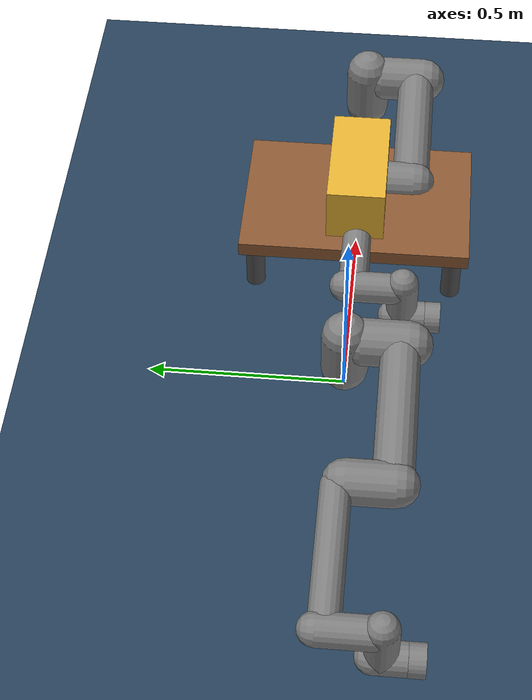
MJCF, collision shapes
<mujoco model="ur5e_lab6_dual">

  <compiler angle="radian" meshdir="assets" autolimits="true"/>
  <option timestep="0.001" gravity="0 0 -9.81" integrator="implicitfast"/>

  <!-- ============================================================
       Shared defaults (Menagerie UR5e class hierarchy)
       ============================================================ -->
  <default>
    <default class="ur5e">
      <material specular="0.5" shininess="0.25"/>
      <joint axis="0 1 0" range="-6.28319 6.28319" armature="0.1"/>
      <default class="size3">
        <default class="size3_limited">
          <joint range="-3.1415 3.1415"/>
        </default>
      </default>
      <default class="size1">
      </default>
      <default class="visual">
        <geom type="mesh" contype="0" conaffinity="0" group="2"/>
      </default>
      <default class="collision">
        <geom type="capsule" group="3"/>
        <default class="eef_collision">
          <geom type="cylinder"/>
        </default>
      </default>
      <site size="0.001" rgba="0.5 0.5 0.5 0.3" group="4"/>
    </default>
  </default>

  <!-- ============================================================
       Shared mesh assets (loaded once, used by both arms)
       ============================================================ -->
  <asset>
    <!-- Menagerie UR5e materials -->
    <material class="ur5e" name="black" rgba="0.033 0.033 0.033 1"/>
    <material class="ur5e" name="jointgray" rgba="0.278 0.278 0.278 1"/>
    <material class="ur5e" name="linkgray" rgba="0.82 0.82 0.82 1"/>
    <material class="ur5e" name="urblue" rgba="0.49 0.678 0.8 1"/>

    <!-- Menagerie UR5e meshes -->
    <mesh file="base_0.obj"/>
    <mesh file="base_1.obj"/>
    <mesh file="shoulder_0.obj"/>
    <mesh file="shoulder_1.obj"/>
    <mesh file="shoulder_2.obj"/>
    <mesh file="upperarm_0.obj"/>
    <mesh file="upperarm_1.obj"/>
    <mesh file="upperarm_2.obj"/>
    <mesh file="upperarm_3.obj"/>
    <mesh file="forearm_0.obj"/>
    <mesh file="forearm_1.obj"/>
    <mesh file="forearm_2.obj"/>
    <mesh file="forearm_3.obj"/>
    <mesh file="wrist1_0.obj"/>
    <mesh file="wrist1_1.obj"/>
    <mesh file="wrist1_2.obj"/>
    <mesh file="wrist2_0.obj"/>
    <mesh file="wrist2_1.obj"/>
    <mesh file="wrist2_2.obj"/>
    <mesh file="wrist3.obj"/>

    <!-- Scene materials -->
    <texture type="skybox" builtin="gradient" rgb1="0.3 0.5 0.7" rgb2="0 0 0"
      width="512" height="3072"/>
    <texture type="2d" name="groundplane" builtin="checker" mark="edge"
      rgb1="0.2 0.3 0.4" rgb2="0.1 0.2 0.3" markrgb="0.8 0.8 0.8"
      width="300" height="300"/>
    <material name="groundplane" texture="groundplane" texuniform="true"
      texrepeat="5 5" reflectance="0.2"/>
    <material name="table_wood" rgba="0.55 0.35 0.20 1"/>
    <material name="box_obj" rgba="0.90 0.70 0.20 1"/>
  </asset>

  <statistic center="0.5 0 0.4" extent="1.8"/>

  <visual>
    <headlight diffuse="0.6 0.6 0.6" ambient="0.3 0.3 0.3" specular="0 0 0"/>
    <rgba haze="0.15 0.25 0.35 1"/>
    <global azimuth="150" elevation="-25" offwidth="1920" offheight="1080"/>
  </visual>

  <!-- Include arm definitions -->
  <include file="ur5e_left.xml"/>
  <include file="ur5e_right.xml"/>

  <!-- Weld constraints for bimanual grasp (disabled by default, activated in M4) -->
  <equality>
    <weld name="left_grasp" body1="left_wrist_3_link" body2="box" active="false"/>
    <weld name="right_grasp" body1="right_wrist_3_link" body2="box" active="false"/>
  </equality>

  <worldbody>
    <!-- Lighting -->
    <light pos="0.5 0 3.0" dir="0 0 -1" directional="true"/>
    <light pos="-1.0 -1.0 2.0" dir="0.5 0.5 -1" directional="false"/>
    <light pos="2.0 -1.0 2.0" dir="-0.5 0.5 -1" directional="false"/>

    <!-- Floor -->
    <geom name="floor" size="0 0 0.05" type="plane" material="groundplane"/>

    <body name="table" pos="0.5 0 0.15">
      <geom name="table_top" type="box" size="0.20 0.30 0.02"
            contype="1" conaffinity="1" material="table_wood"
            friction="0.8 0.005 0.0001"/>
      <!-- Table legs (visual only) -->
      <geom type="cylinder" pos="-0.16 -0.26 -0.085" size="0.025 0.065"
            rgba="0.3 0.3 0.3 1" contype="0" conaffinity="0"/>
      <geom type="cylinder" pos=" 0.16 -0.26 -0.085" size="0.025 0.065"
            rgba="0.3 0.3 0.3 1" contype="0" conaffinity="0"/>
      <geom type="cylinder" pos="-0.16  0.26 -0.085" size="0.025 0.065"
            rgba="0.3 0.3 0.3 1" contype="0" conaffinity="0"/>
      <geom type="cylinder" pos=" 0.16  0.26 -0.085" size="0.025 0.065"
            rgba="0.3 0.3 0.3 1" contype="0" conaffinity="0"/>
    </body>

    <!-- Box object (free body).
         30cm x 15cm x 15cm -> half-extents: 0.15 x 0.075 x 0.075.
         Table surface at z=0.17, box half-height=0.075 -> center at z=0.245. -->
    <body name="box" pos="0.5 0 0.245">
      <freejoint name="box_freejoint"/>
      <geom name="box_geom" type="box" size="0.15 0.075 0.075"
            contype="1" conaffinity="1" condim="4"
            friction="2.0 0.01 0.001"
            solref="0.01 1" solimp="0.95 0.99 0.001"
            density="296" material="box_obj"/>
    </body>
  </worldbody>

</mujoco>

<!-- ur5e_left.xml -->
<mujoco>
  <!--
    Left UR5e arm (Menagerie body hierarchy with OBJ mesh visuals).
    Base at world origin with Menagerie mesh-alignment quat.
    Motor actuators for direct torque control.
  -->
  <worldbody>
    <body name="left_base" pos="0 0 0" quat="0 0 0 -1" childclass="ur5e">
      <inertial mass="4.0" pos="0 0 0" diaginertia="0.00443333156 0.00443333156 0.0072"/>
      <geom mesh="base_0" material="black" class="visual"/>
      <geom mesh="base_1" material="jointgray" class="visual"/>
      <body name="left_shoulder_link" pos="0 0 0.163">
        <inertial mass="3.7" pos="0 0 0" diaginertia="0.0102675 0.0102675 0.00666"/>
        <joint name="left_shoulder_pan_joint" class="size3" axis="0 0 1"/>
        <geom mesh="shoulder_0" material="urblue" class="visual"/>
        <geom mesh="shoulder_1" material="black" class="visual"/>
        <geom mesh="shoulder_2" material="jointgray" class="visual"/>
        <geom class="collision" size="0.06 0.06" pos="0 0 -0.04"/>
        <body name="left_upper_arm_link" pos="0 0.138 0" quat="1 0 1 0">
          <inertial mass="8.393" pos="0 0 0.2125" diaginertia="0.133886 0.133886 0.0151074"/>
          <joint name="left_shoulder_lift_joint" class="size3"/>
          <geom mesh="upperarm_0" material="linkgray" class="visual"/>
          <geom mesh="upperarm_1" material="black" class="visual"/>
          <geom mesh="upperarm_2" material="jointgray" class="visual"/>
          <geom mesh="upperarm_3" material="urblue" class="visual"/>
          <geom class="collision" pos="0 -0.04 0" quat="1 1 0 0" size="0.06 0.06"/>
          <geom class="collision" size="0.05 0.2" pos="0 0 0.2"/>
          <body name="left_forearm_link" pos="0 -0.131 0.425">
            <inertial mass="2.275" pos="0 0 0.196" diaginertia="0.0311796 0.0311796 0.004095"/>
            <joint name="left_elbow_joint" class="size3_limited"/>
            <geom mesh="forearm_0" material="urblue" class="visual"/>
            <geom mesh="forearm_1" material="linkgray" class="visual"/>
            <geom mesh="forearm_2" material="black" class="visual"/>
            <geom mesh="forearm_3" material="jointgray" class="visual"/>
            <geom class="collision" pos="0 0.08 0" quat="1 1 0 0" size="0.055 0.06"/>
            <geom class="collision" size="0.038 0.19" pos="0 0 0.2"/>
            <body name="left_wrist_1_link" pos="0 0 0.392" quat="1 0 1 0">
              <inertial mass="1.219" pos="0 0.127 0" diaginertia="0.0025599 0.0025599 0.0021942"/>
              <joint name="left_wrist_1_joint" class="size1"/>
              <geom mesh="wrist1_0" material="black" class="visual"/>
              <geom mesh="wrist1_1" material="urblue" class="visual"/>
              <geom mesh="wrist1_2" material="jointgray" class="visual"/>
              <geom class="collision" pos="0 0.05 0" quat="1 1 0 0" size="0.04 0.07"/>
              <body name="left_wrist_2_link" pos="0 0.127 0">
                <inertial mass="1.219" pos="0 0 0.1" diaginertia="0.0025599 0.0025599 0.0021942"/>
                <joint name="left_wrist_2_joint" axis="0 0 1" class="size1"/>
                <geom mesh="wrist2_0" material="black" class="visual"/>
                <geom mesh="wrist2_1" material="urblue" class="visual"/>
                <geom mesh="wrist2_2" material="jointgray" class="visual"/>
                <geom class="collision" size="0.04 0.06" pos="0 0 0.04"/>
                <geom class="collision" pos="0 0.02 0.1" quat="1 1 0 0" size="0.04 0.04"/>
                <body name="left_wrist_3_link" pos="0 0 0.1">
                  <inertial mass="0.1889" pos="0 0.0771683 0" quat="1 0 0 1"
                    diaginertia="0.000132134 9.90863e-05 9.90863e-05"/>
                  <joint name="left_wrist_3_joint" class="size1"/>
                  <geom material="linkgray" mesh="wrist3" class="visual"/>
                  <geom class="eef_collision" pos="0 0.08 0" quat="1 1 0 0" size="0.04 0.02"/>
                  <!-- Site z-axis = tool approach direction (body +Y) via R_x(-90deg) -->
                  <site name="left_ee_site" pos="0 0.1 0"
                        quat="0.7071 -0.7071 0 0" size="0.012" rgba="1 0.2 0.2 1"/>
                </body>
              </body>
            </body>
          </body>
        </body>
      </body>
    </body>
  </worldbody>

  <actuator>
    <motor name="left_motor1" joint="left_shoulder_pan_joint" ctrllimited="true" ctrlrange="-150 150"/>
    <motor name="left_motor2" joint="left_shoulder_lift_joint" ctrllimited="true" ctrlrange="-150 150"/>
    <motor name="left_motor3" joint="left_elbow_joint" ctrllimited="true" ctrlrange="-150 150"/>
    <motor name="left_motor4" joint="left_wrist_1_joint" ctrllimited="true" ctrlrange="-28 28"/>
    <motor name="left_motor5" joint="left_wrist_2_joint" ctrllimited="true" ctrlrange="-28 28"/>
    <motor name="left_motor6" joint="left_wrist_3_joint" ctrllimited="true" ctrlrange="-28 28"/>
  </actuator>
</mujoco>

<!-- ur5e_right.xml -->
<mujoco>
  <worldbody>
    <body name="right_base" pos="1.0 0 0" quat="0 0 0 -1" childclass="ur5e">
      <inertial mass="4.0" pos="0 0 0" diaginertia="0.00443333156 0.00443333156 0.0072"/>
      <geom mesh="base_0" material="black" class="visual"/>
      <geom mesh="base_1" material="jointgray" class="visual"/>
      <body name="right_shoulder_link" pos="0 0 0.163">
        <inertial mass="3.7" pos="0 0 0" diaginertia="0.0102675 0.0102675 0.00666"/>
        <joint name="right_shoulder_pan_joint" class="size3" axis="0 0 1"/>
        <geom mesh="shoulder_0" material="urblue" class="visual"/>
        <geom mesh="shoulder_1" material="black" class="visual"/>
        <geom mesh="shoulder_2" material="jointgray" class="visual"/>
        <geom class="collision" size="0.06 0.06" pos="0 0 -0.04"/>
        <body name="right_upper_arm_link" pos="0 0.138 0" quat="1 0 1 0">
          <inertial mass="8.393" pos="0 0 0.2125" diaginertia="0.133886 0.133886 0.0151074"/>
          <joint name="right_shoulder_lift_joint" class="size3"/>
          <geom mesh="upperarm_0" material="linkgray" class="visual"/>
          <geom mesh="upperarm_1" material="black" class="visual"/>
          <geom mesh="upperarm_2" material="jointgray" class="visual"/>
          <geom mesh="upperarm_3" material="urblue" class="visual"/>
          <geom class="collision" pos="0 -0.04 0" quat="1 1 0 0" size="0.06 0.06"/>
          <geom class="collision" size="0.05 0.2" pos="0 0 0.2"/>
          <body name="right_forearm_link" pos="0 -0.131 0.425">
            <inertial mass="2.275" pos="0 0 0.196" diaginertia="0.0311796 0.0311796 0.004095"/>
            <joint name="right_elbow_joint" class="size3_limited"/>
            <geom mesh="forearm_0" material="urblue" class="visual"/>
            <geom mesh="forearm_1" material="linkgray" class="visual"/>
            <geom mesh="forearm_2" material="black" class="visual"/>
            <geom mesh="forearm_3" material="jointgray" class="visual"/>
            <geom class="collision" pos="0 0.08 0" quat="1 1 0 0" size="0.055 0.06"/>
            <geom class="collision" size="0.038 0.19" pos="0 0 0.2"/>
            <body name="right_wrist_1_link" pos="0 0 0.392" quat="1 0 1 0">
              <inertial mass="1.219" pos="0 0.127 0" diaginertia="0.0025599 0.0025599 0.0021942"/>
              <joint name="right_wrist_1_joint" class="size1"/>
              <geom mesh="wrist1_0" material="black" class="visual"/>
              <geom mesh="wrist1_1" material="urblue" class="visual"/>
              <geom mesh="wrist1_2" material="jointgray" class="visual"/>
              <geom class="collision" pos="0 0.05 0" quat="1 1 0 0" size="0.04 0.07"/>
              <body name="right_wrist_2_link" pos="0 0.127 0">
                <inertial mass="1.219" pos="0 0 0.1" diaginertia="0.0025599 0.0025599 0.0021942"/>
                <joint name="right_wrist_2_joint" axis="0 0 1" class="size1"/>
                <geom mesh="wrist2_0" material="black" class="visual"/>
                <geom mesh="wrist2_1" material="urblue" class="visual"/>
                <geom mesh="wrist2_2" material="jointgray" class="visual"/>
                <geom class="collision" size="0.04 0.06" pos="0 0 0.04"/>
                <geom class="collision" pos="0 0.02 0.1" quat="1 1 0 0" size="0.04 0.04"/>
                <body name="right_wrist_3_link" pos="0 0 0.1">
                  <inertial mass="0.1889" pos="0 0.0771683 0" quat="1 0 0 1"
                    diaginertia="0.000132134 9.90863e-05 9.90863e-05"/>
                  <joint name="right_wrist_3_joint" class="size1"/>
                  <geom material="linkgray" mesh="wrist3" class="visual"/>
                  <geom class="eef_collision" pos="0 0.08 0" quat="1 1 0 0" size="0.04 0.02"/>
                  <!-- Site z-axis = tool approach direction (body +Y) via R_x(-90deg) -->
                  <site name="right_ee_site" pos="0 0.1 0"
                        quat="0.7071 -0.7071 0 0" size="0.012" rgba="0.2 0.2 1.0 1"/>
                </body>
              </body>
            </body>
          </body>
        </body>
      </body>
    </body>
  </worldbody>

  <actuator>
    <motor name="right_motor1" joint="right_shoulder_pan_joint" ctrllimited="true" ctrlrange="-150 150"/>
    <motor name="right_motor2" joint="right_shoulder_lift_joint" ctrllimited="true" ctrlrange="-150 150"/>
    <motor name="right_motor3" joint="right_elbow_joint" ctrllimited="true" ctrlrange="-150 150"/>
    <motor name="right_motor4" joint="right_wrist_1_joint" ctrllimited="true" ctrlrange="-28 28"/>
    <motor name="right_motor5" joint="right_wrist_2_joint" ctrllimited="true" ctrlrange="-28 28"/>
    <motor name="right_motor6" joint="right_wrist_3_joint" ctrllimited="true" ctrlrange="-28 28"/>
  </actuator>
</mujoco>
